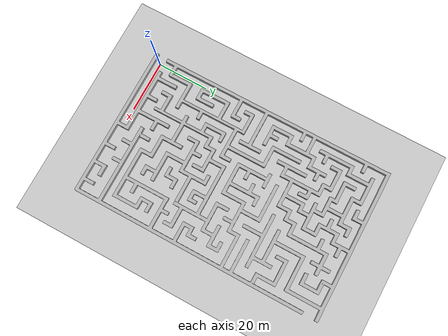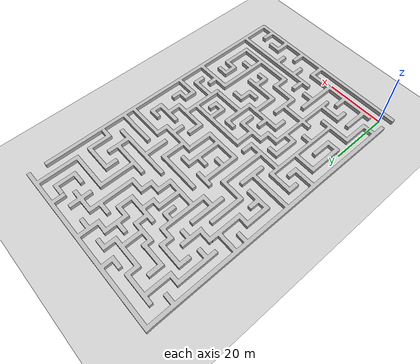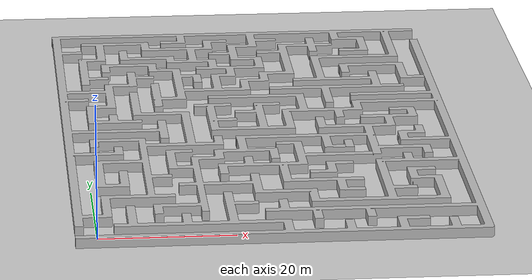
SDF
<?xml version="1.0"?>
<sdf version="1.6">
	<world name="default">
		<scene>
			<ambient>0.4 0.4 0.4 1</ambient>
			<background>0.25 0.25 0.25 1</background>
			<shadows>true</shadows>
		</scene>

		<light type="directional" name="sun">
			<pose>0 0 10 0 0 0</pose>
			<diffuse>0.8 0.8 0.8 1</diffuse>
			<specular>0.2 0.2 0.2 1</specular>

			<attenuation>
				<range>1000</range>
				<constant>0.9</constant>
				<linear>0.01</linear>
				<quadratic>0.001</quadratic>
			</attenuation>

			<direction>0.5 0.1 -0.9</direction>
		</light>

		<include>
			<uri>model://ground_plane</uri>
		</include>

		<model name ="maze1">
			<pose>0 0 0  0 0 0</pose>
			<static>true</static>
			<link name="maze_self">
				<visual name="visual">
					<geometry>
						<mesh><uri>file://maze1.dae</uri></mesh>
					</geometry>
				</visual>
			</link>
		</model>

	</world>
</sdf>
